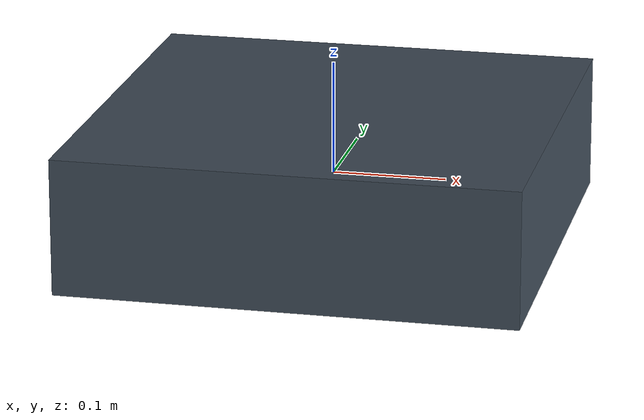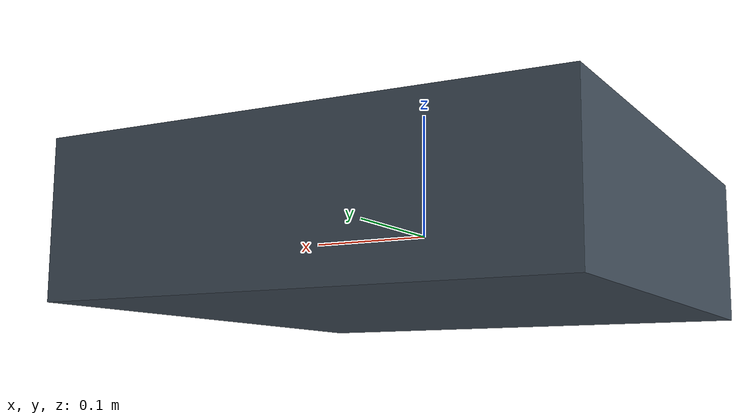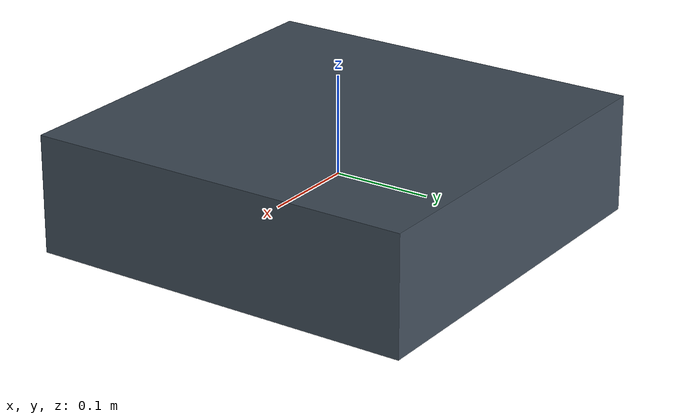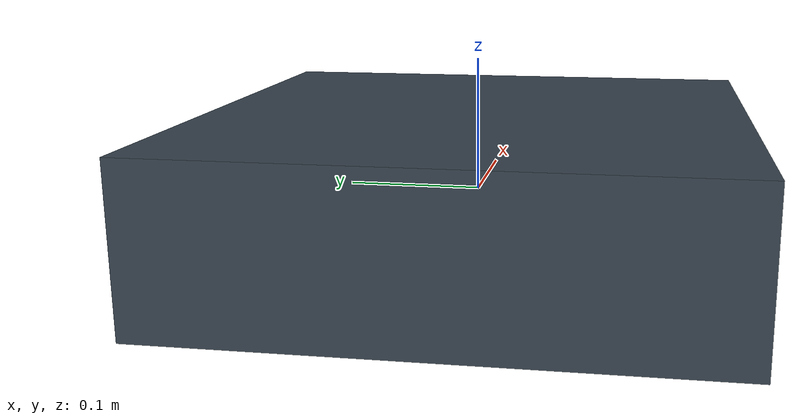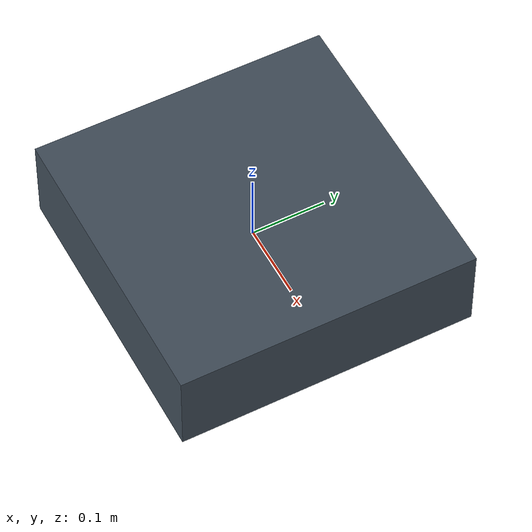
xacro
<?xml version="1.0"?>
<robot xmlns:xacro="http://www.ros.org/wiki/xacro" name="aegis_drone">
  <!-- Sensor rig only. No flight dynamics, moving joints or dynamic TF. -->
  <link name="base_link">
    <visual><geometry><box size="0.4 0.4 0.12"/></geometry>
      <material name="body_gray"><color rgba="0.25 0.3 0.35 1"/></material>
    </visual>
  </link>
  <xacro:macro name="fixed_frame" params="parent child xyz rpy">
    <link name="${child}"/>
    <joint name="${parent}_to_${child}" type="fixed">
      <parent link="${parent}"/><child link="${child}"/>
      <origin xyz="${xyz}" rpy="${rpy}"/>
    </joint>
  </xacro:macro>
  <xacro:fixed_frame parent="base_link" child="camera_link" xyz="0.25 0 0" rpy="0 0 0"/>
  <!-- Optical axes: +Z forward, +X right, +Y down. -->
  <xacro:fixed_frame parent="camera_link" child="camera_optical_frame"
                     xyz="0 0 0" rpy="${-pi/2} 0 ${-pi/2}"/>
  <xacro:fixed_frame parent="base_link" child="imu_link" xyz="0 0 0" rpy="0 0 0"/>
  <xacro:fixed_frame parent="base_link" child="lidar_link" xyz="0 0 0.15" rpy="0 0 0"/>
</robot>
